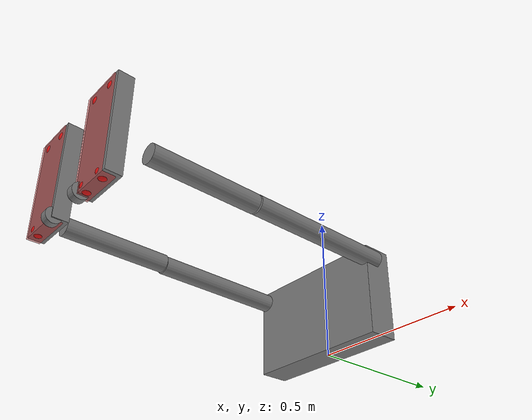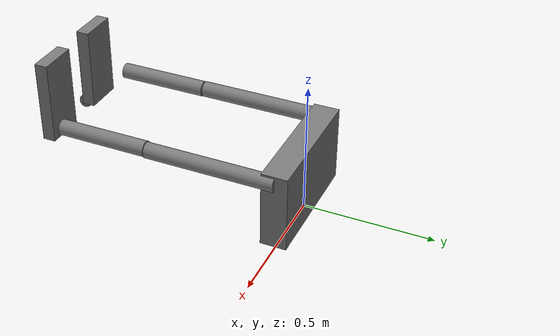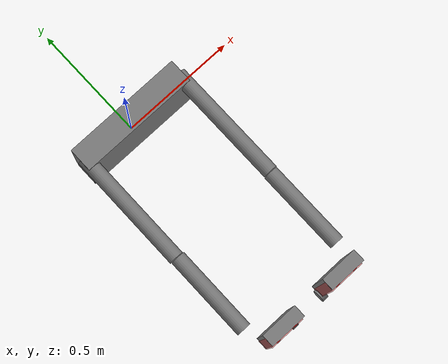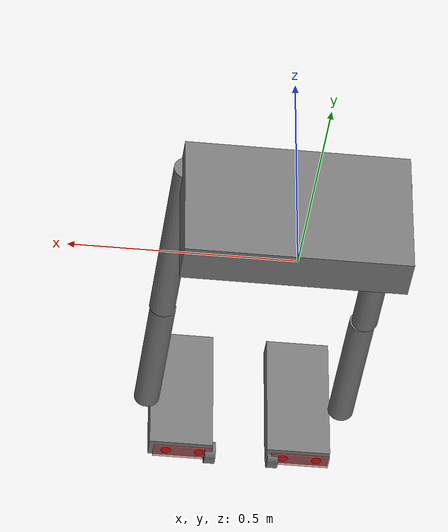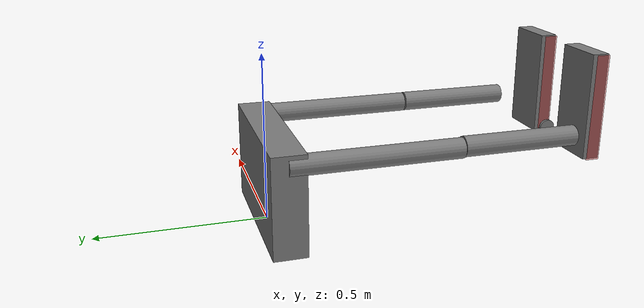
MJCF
<mujoco model="KF_NJIT_Rehab_Exo">
  <compiler angle="radian" meshdir="assets" autolimits="true"/>

  <default>
    <geom type="mesh" solimp="0.95 0.99 0.001" solref="0.005 1"/>
    <default class="visual">
      <geom group="1" type="mesh" contype="0" conaffinity="0" rgba="0.48 0.48 0.48 1"/>
    </default>
    <default class="collision">
      <geom group="0" type="box" rgba="0.8 0.2 0.2 0.5"/>
    </default>
  </default>

  <asset>
    </asset>

  <worldbody>
    <body name="base" pos="0 0 0">
      <freejoint/>
      <inertial pos="0 0 0" mass="0.01" fullinertia="1e-4 1e-4 1e-4 0 0 0"/>

      <body name="exo_pelvis" pos="0 0 0" euler="0 -1.5707 0">
        <inertial pos="0.164969 -0.016465 -0.00031201" mass="3.40529" fullinertia="0.108005 0.140273 0.0409718 0.00342849 0.00011722 -6.056e-05"/>
        <geom type="box" size="0.15 0.05 0.25" pos="0.134969 -0.016465 -0.00031201" class="visual"/>

        <body name="Battery" pos="0 0 0">
           <inertial pos="-0.0292753 0.0823604 -0.00041407" mass="2.2" fullinertia="0.00909547 0.00798838 0.00423978 -0.00038364 -7.94e-06 -3.83e-06"/>
        </body>

        <body name="r_exo_femur" pos="0.25 -0.06 0.21">
          <inertial pos="-0.00012287 -0.205637 0.0391034" mass="2.77725" fullinertia="0.0378701 0.00419727 0.0353309 7.8e-05 -0.00043864 -0.00038322"/>
          <joint name="r_exo_femur" axis="0 0 1" range="-1.309 1.309"/>
          <geom type="cylinder" size="0.03 0.25" pos="-0.00012287 -0.205637 0.0201034" euler="1.57 0 0" class="visual"/>

          <body name="r_exo_tibia" pos="0 -0.41 0">
            <inertial pos="0.00130324 -0.0640757 0.0163233" mass="0.60426" fullinertia="0.00549709 0.00033891 0.00532813 -4.48e-05 -6.27e-06 -0.00064841"/>
            <joint name="r_exo_tibia" axis="0 0 1" range="-2.094 0.0"/>
            <geom type="cylinder" size="0.03 0.175" pos="0.00130324 -0.2240757 0.0163233" euler="1.57 0 0" class="visual"/>

            <body name="r_shank_support" pos="0 -0.25 0">
              <inertial pos="-0.0220563 -0.0501763 -0.0332489" mass="0.24824" fullinertia="0.0009242 0.00070211 0.00054663 0.00012989 -0.00019488 0.00018796"/>

              <body name="r_ankle_coupling" pos="0 -0.129 0">
                <inertial pos="0.0270888 -0.0211255 -0.0183098" mass="0.194678" fullinertia="0.00020434 0.00086131 0.00083139 -0.00019895 -3.6e-07 -1.193e-05"/>
                <joint name="r_ankle_coupling" axis="0 0 1" range="-0.6981 0.2618"/>
                <geom type="cylinder" size="0.0254 0.0127" pos="-0.0784998 -0.1185 -0.135" class="visual"/>

                <body name="r_foot" pos="0.11 0.001 -0.0699999" euler="0 0 0.29">
                  <inertial pos="-0.0647188 -0.0863198 0.00643328" mass="1.39879" fullinertia="0.00411567 0.0161809 0.0165848 0.00314958 -0.00066379 -0.00019919"/>
                  <joint name="r_foot" axis="1 0 0" range="-0.2618 0.2618"/>
                  <geom type="box" size="0.16 0.025 0.075" pos="-0.0647188 -0.0863198 -0.00643328" euler="0 0 -0.285" class="visual"/>

                  <body name="r_foot_ground" pos="0 -0.135 0" euler="3.14159 3.14159 2.85159">
                     <geom type="sphere" size="0.02" pos="-0.22 0.02 0.04" rgba="1 0 0 1" group="1"/>
                     <geom type="sphere" size="0.02" pos="0.06 0.02 0.04" rgba="1 0 0 1" group="1"/>
                     <geom type="sphere" size="0.02" pos="-0.22 0.02 -0.04" rgba="1 0 0 1" group="1"/>
                     <geom type="sphere" size="0.02" pos="0.06 0.02 -0.04" rgba="1 0 0 1" group="1"/>
                     <geom name="r_foot_col" type="box" size="0.16 0.02 0.07" pos="-0.08 0.02 0.0" class="collision"/>
                  </body>

                  <body name="r_DM_universalJoint" pos="-0.2295 -0.0188 -0.0449999" euler="3.14159 3.14159 2.85159">
                      <inertial pos="0.0155966 7.195e-05 0.00034455" mass="0.0206009" fullinertia="3e-06 4.33e-06 3.25e-06 0 0 2e-08"/>
                  </body>
                </body>
              </body>

              <body name="r_PM-universalJoint" pos="-0.0929998 -0.015 -0.128">
                 <inertial pos="0.0149574 0.0007084 0.00071015" mass="0.0185407" fullinertia="2.83e-06 4.1e-06 3.03e-06 3e-08 0 1e-08"/>
                 <body name="r_PM_motor" pos="0 0 0">
                    <inertial pos="-0.0349995 -0.00998801 0.00107767" mass="0.710493" fullinertia="0.00130206 0.00053081 0.00149024 0.00024557 2.1e-07 4.99e-06"/>
                 </body>
              </body>
            </body>
          </body>
        </body>

        <body name="l_exo_femur" pos="0.25 -0.06 -0.21">
          <inertial pos="-0.00012287 -0.205637 -0.0391034" mass="2.77725" fullinertia="0.0378701 0.00419727 0.0353309 7.8e-05 0.00043864 0.00038322"/>
          <joint name="l_exo_femur" axis="0 0 1" range="-1.309 1.309"/>
          <geom type="cylinder" size="0.03 0.25" pos="-0.00012287 -0.205637 -0.0291034" euler="1.57 0 0" class="visual"/>

          <body name="l_exo_tibia" pos="0 -0.41 0">
            <inertial pos="0.00130324 -0.0640757 -0.0163233" mass="0.60426" fullinertia="0.00549709 0.00033891 0.00532813 -4.48e-05 6.27e-06 0.00064841"/>
            <joint name="l_exo_tibia" axis="0 0 1" range="-2.094 0.0"/>
            <geom type="cylinder" size="0.03 0.175" pos="0.00130324 -0.2240757 -0.0263233" euler="1.57 0 0" class="visual"/>

             <body name="l_shank_support" pos="0 -0.25 0">
              <inertial pos="-0.0220563 -0.0501763 0.0332489" mass="0.24824" fullinertia="0.0009242 0.00070211 0.00054663 0.00012989 0.00019488 -0.00018796"/>

              <body name="l_ankle_coupling" pos="0 -0.129 0">
                <inertial pos="0.0270888 -0.0211255 0.0183098" mass="0.194678" fullinertia="0.00020434 0.00086131 0.00083139 -0.00019895 3.6e-07 1.193e-05"/>
                <joint name="l_ankle_coupling" axis="0 0 1" range="-0.6981 0.2618"/>
                <geom type="cylinder" size="0.0254 0.0127" pos="-0.0784998 -0.1185 0.135" class="visual"/>

                <body name="l_foot" pos="0.11 0.001 0.0699999" euler="0 0 0.29">
                  <inertial pos="-0.0647188 -0.0863198 -0.00643328" mass="1.39879" fullinertia="0.00411567 0.0161809 0.0165848 0.00314958 0.00066379 0.00019919"/>
                  <joint name="l_foot" axis="-1 0 0" range="-0.2618 0.2618"/>
                  <geom type="box" size="0.16 0.025 0.075" pos="-0.0647188 -0.0863198 -0.00643328" euler="0 0 -0.285" class="visual"/>

                  <body name="l_foot_ground" pos="0 -0.135 0" euler="3.14159 3.14159 2.85159">
                     <geom type="sphere" size="0.02" pos="-0.22 0.02 0.04" rgba="1 0 0 1" group="1"/>
                     <geom type="sphere" size="0.02" pos="0.06 0.02 0.04" rgba="1 0 0 1" group="1"/>
                     <geom type="sphere" size="0.02" pos="-0.22 0.02 -0.04" rgba="1 0 0 1" group="1"/>
                     <geom type="sphere" size="0.02" pos="0.06 0.02 -0.04" rgba="1 0 0 1" group="1"/>
                     <geom name="l_foot_col" type="box" size="0.16 0.02 0.07" pos="-0.08 0.02 0.0" class="collision"/>
                  </body>
                </body>
              </body>
            </body>
          </body>
        </body>

      </body>
    </body>
  </worldbody>
</mujoco>
